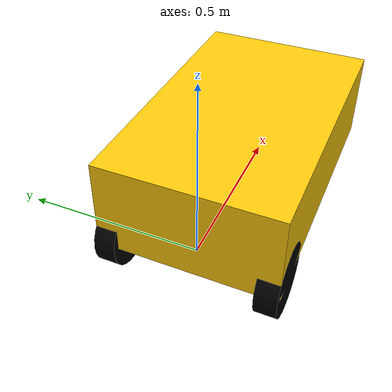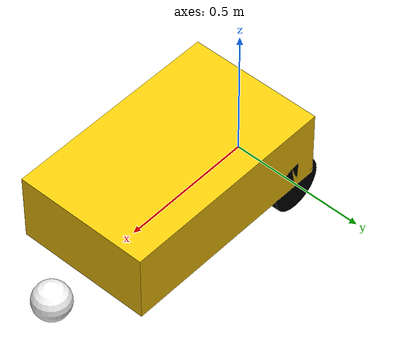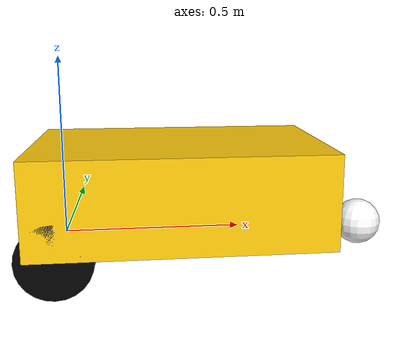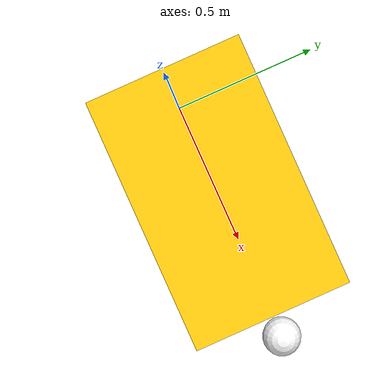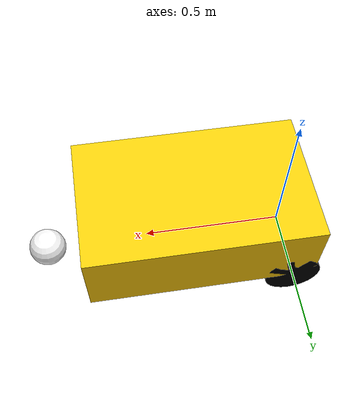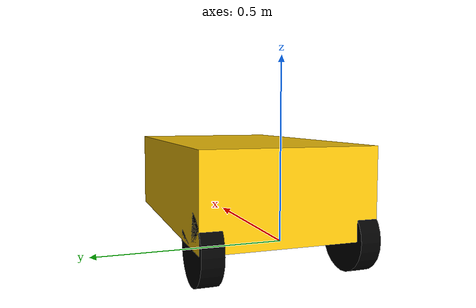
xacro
<?xml version="1.0"?>
<robot xmlns:xacro="http://www.ros.org/wiki/xacro">

    <xacro:include filename="inertial_macros.xacro"/>

    <!-- Define Materials -->
    <material name="white">
        <color rgba="1 1 1 1" />
    </material>
    <material name="orange">
        <color rgba="1 0.3 0.1 1"/>
    </material>
    <material name="blue">
        <color rgba="0.2 0.2 1 1"/>
    </material>
    <material name="black">
        <color rgba="0 0 0 1"/>
    </material>
    <material name="yellow">
        <color rgba="1.00 0.792 0.0400 1"/>
    </material>
    <material name="grey">
        <color rgba="0.616 0.616 0.616 1"/>
    </material>

    <!-- Base Link -->
    <link name="base_link"></link>

    <!-- Base Footprint Link -->
    <joint name="base_footprint_joint" type="fixed">
        <parent link="base_link"/>
        <child link="base_footprint"/>
        <origin xyz="0 0 0.1" rpy="0 0 0"/>
    </joint>
    <link name="base_footprint"></link>

    <!-- Chassis Link -->
    <joint name="chassis_joint" type="fixed">
        <parent link="base_link"/>
        <child link="chassis"/>
        <origin xyz="-0.1 0 0"/>
    </joint>
    <link name="chassis">
        <visual>
            <origin xyz="0.426 0 0.130"/>
            <geometry>
                <box size="0.810 0.500 0.259"/>
            </geometry>
            <material name="yellow"/>
        </visual>
        <collision>
            <origin xyz="0.426 0 0.130"/>
            <geometry>
                <box size="0.810 0.500 0.259"/>
            </geometry>
        </collision>
        <xacro:inertial_box mass="0.3" x="0.810" y="0.500" z="0.259">
            <origin xyz="0.426 0 0.130" rpy="0 0 0"/>
        </xacro:inertial_box>
    </link>
    <gazebo reference="chassis">
        <material>Gazebo/Yellow</material>
    </gazebo>

    <!-- Left Wheel Link -->
    <joint name="left_wheel_joint" type="continuous">
        <parent link="base_link"/>
        <child link="left_wheel"/>
        <origin xyz="0 0.220 0" rpy="-${pi/2} 0 0" />
        <axis xyz="0 0 1"/>
    </joint>
    <link name="left_wheel">
        <visual>
            <geometry>
                <cylinder radius="0.1" length="0.06"/>
            </geometry>
            <material name="black"/>
        </visual>
        <collision>
            <geometry>
                <sphere radius="0.1"/>
            </geometry>
        </collision>
        <xacro:inertial_cylinder mass="0.3" length="0.06" radius="0.1">
            <origin xyz="0 0 0" rpy="0 0 0"/>
        </xacro:inertial_cylinder>
    </link>
    <gazebo reference="left_wheel">
        <material>Gazebo/Black</material>
    </gazebo>

    <!-- Right Wheel Link -->
    <joint name="right_wheel_joint" type="continuous">
        <parent link="base_link"/>
        <child link="right_wheel"/>
        <origin xyz="0 -0.220 0" rpy="${pi/2} 0 0" />
        <axis xyz="0 0 -1"/>
    </joint>
    <link name="right_wheel">
        <visual>
            <geometry>
                <cylinder radius="0.1" length="0.06"/>
            </geometry>
            <material name="black"/>
        </visual>
        <collision>
            <geometry>
                <sphere radius="0.1"/>
            </geometry>
        </collision>
        <xacro:inertial_cylinder mass="0.3" length="0.06" radius="0.1">
            <origin xyz="0 0 0" rpy="0 0 0"/>
        </xacro:inertial_cylinder>
    </link>
    <gazebo reference="right_wheel">
        <material>Gazebo/Black</material>
    </gazebo>

    <!-- Caster Wheel Link -->
    <joint name="caster_wheel_joint" type="fixed">
        <parent link="chassis"/>
        <child link="caster_wheel"/>
        <origin xyz="0.970 0 0"/>
    </joint>
    <link name="caster_wheel">
        <visual>
            <geometry>
                <sphere radius="0.0675"/>
            </geometry>
            <material name="white"/>
        </visual>
        <collision>
            <geometry>
                <sphere radius="0.0675"/>
            </geometry>
        </collision>
        <xacro:inertial_sphere mass="0.3" radius="0.0675">
            <origin xyz="0 0 0"/>
        </xacro:inertial_sphere>
    </link>
    <gazebo reference="caster_wheel">
        <material>Gazebo/White</material>
        <mu1 value="0.001"/>
        <mu2 value="0.001"/>
    </gazebo>

</robot>
